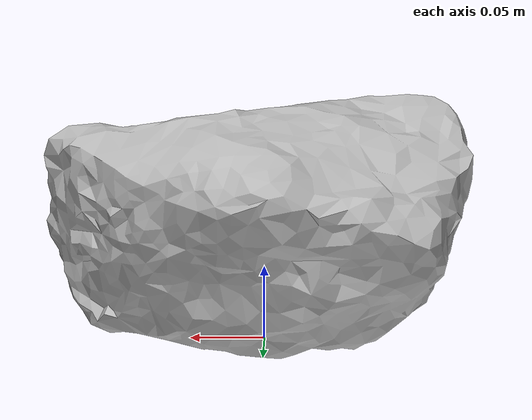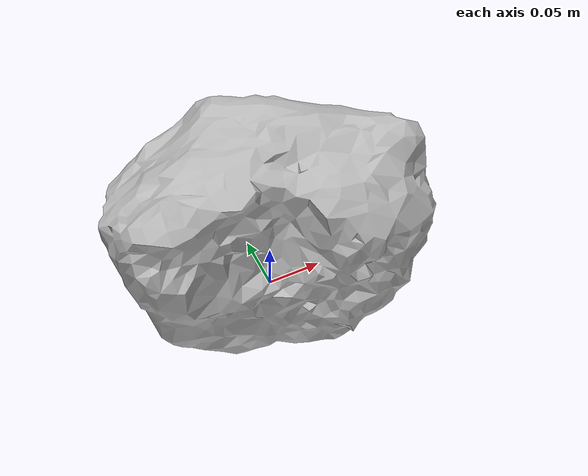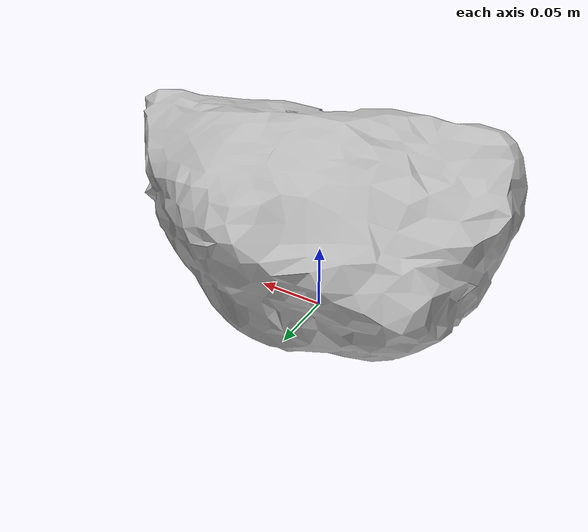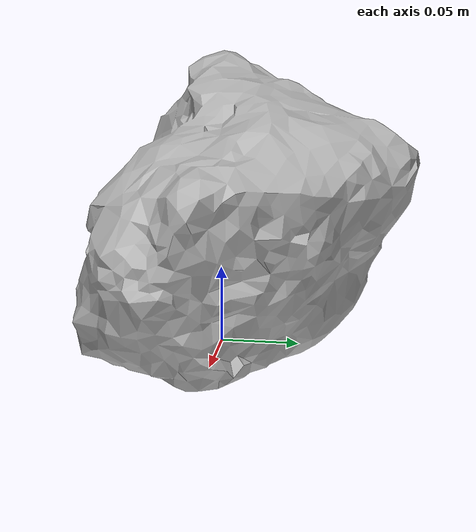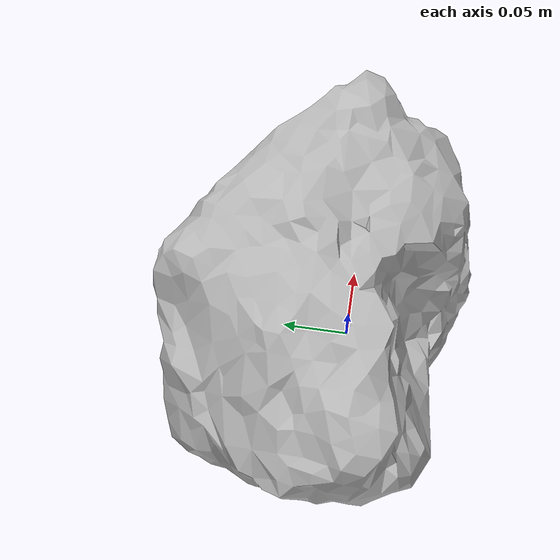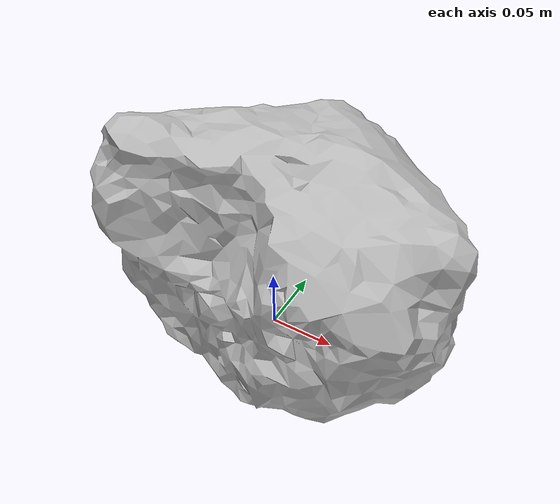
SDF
<?xml version="1.0" ?>
<sdf version="1.6">
    <model name="rock_2K_bf18f3e1-4f7c-457d-b70a-56315998a211">
        <static>true</static>
        <link name="link">
            <collision name="collision">
                <geometry>
                    <mesh>
                        <uri>model://rock/rock_2K_bf18f3e1-4f7c-457d-b70a-56315998a211/mesh/rock_2K_bf18f3e1-4f7c-457d-b70a-56315998a211_collision.dae</uri>
                    </mesh>
                </geometry>
            </collision>
            <visual name="visual">
                <geometry>
                    <mesh>
                        <uri>model://rock/rock_2K_bf18f3e1-4f7c-457d-b70a-56315998a211/mesh/rock_2K_bf18f3e1-4f7c-457d-b70a-56315998a211.dae</uri>
                    </mesh>
                </geometry>
                <material>
                    <script>
                        <uri>model://rock/rock_2K_bf18f3e1-4f7c-457d-b70a-56315998a211/materials/rock_2K_bf18f3e1-4f7c-457d-b70a-56315998a211.material</uri>
                        <name>rock_2K_bf18f3e1-4f7c-457d-b70a-56315998a211</name>
                    </script>
                </material>
            </visual>
        </link>
    </model>
</sdf>
